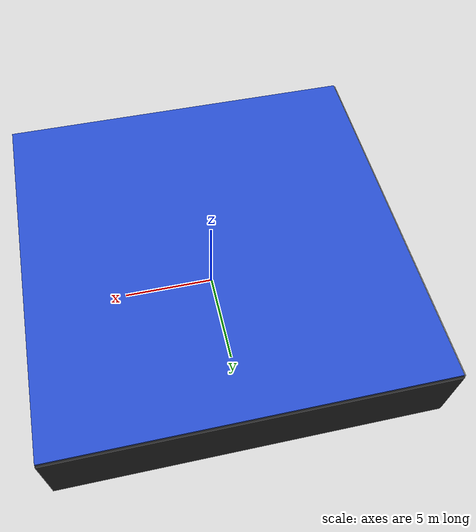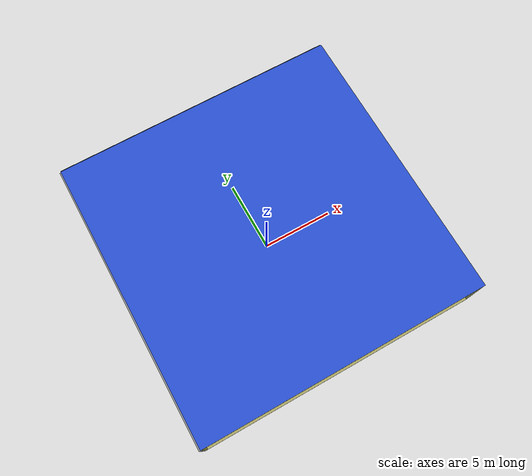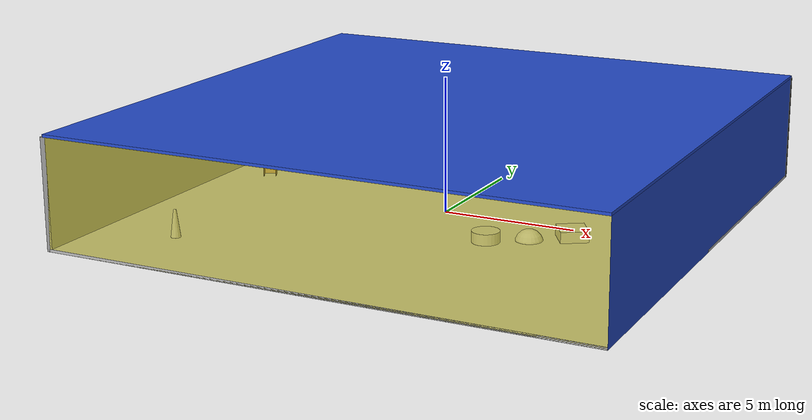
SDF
<sdf version="1.4">
 <world name="default">
  <physics type="ode">
   <max_step_size>0.001</max_step_size>
   <real_time_factor>1</real_time_factor>
   <real_time_update_rate>1000</real_time_update_rate>
   <gravity>0 0 -9.8</gravity>
  </physics>
  <scene><ambient>0.4 0.4 0.4 1</ambient><background>0.7 0.7 0.7 1</background><shadows>1</shadows></scene>
  <model name="Surrounding">
   <static>1</static>
   <link name="Ceiling">
    <collision name="Ceiling_Collision"><geometry><box><size>20 20 0.1</size></box></geometry></collision>
    <visual name="Ceiling_Visual">
     <geometry><box><size>20 20 0.1</size></box></geometry>
     <material>
      <script><uri>file://media/materials/scripts/gazebo.material</uri><name>Gazebo/BlueGlow</name></script>
     </material>
    </visual>
    <pose>0 0 4.05 0 0 0</pose>
   </link>
   <link name="Wall_South">
    <collision name="Wall_South_Collision">
     <geometry><box><size>20 0 4</size></box></geometry>
     <pose>0 0 2 0 -0 0</pose>
    </collision>
    <visual name="Wall_South_Visual">
     <pose>0 0 2 0 -0 0</pose>
     <geometry><box><size>20 0 4</size></box></geometry>
     <material>
      <script>
       <uri>file://media/materials/scripts/gazebo.material</uri>
       <name>Gazebo/YellowTransparent</name>
      </script>
     </material>
    </visual>
    <velocity_decay><linear>0</linear><angular>0</angular></velocity_decay>
    <pose>0 -10 0 0 -0 0</pose>
   </link>
   <link name="Wall_East">
    <collision name="Wall_21_Collision">
     <geometry><box><size>20 0 4</size></box></geometry>
     <pose>0 0 2 0 -0 0</pose>
    </collision>
    <visual name="Wall_21_Visual">
     <pose>0 0 2 0 -0 0</pose>
     <geometry><box><size>20 0 4</size></box></geometry>
     <material>
      <script><uri>file://media/materials/scripts/gazebo.material</uri><name>Gazebo/Blue</name></script>
     </material>
    </visual>
    <velocity_decay><linear>0</linear><angular>0</angular></velocity_decay>
    <pose>10 0 0 0 -0 1.5708</pose>
   </link>
   <link name="Wall_North">
    <collision name="Wall_22_Collision">
     <geometry><box><size>20 0.2 4</size></box></geometry>
     <pose>0 0 2 0 -0 0</pose>
    </collision>
    <visual name="Wall_22_Visual">
     <pose>0 0 2 0 -0 0</pose>
     <geometry><box><size>20 0.2 4</size></box></geometry>
     <material>
      <script><uri>file://media/materials/scripts/gazebo.material</uri><name>Gazebo/Black</name></script>
     </material>
    </visual>
    <velocity_decay><linear>0</linear><angular>0</angular></velocity_decay>
    <pose>0 10 0 0 -0 0</pose>
   </link>
   <link name="Wall_West">
    <collision name="Wall_23_Collision">
     <geometry><box><size>20 0.2 4</size></box></geometry>
     <pose>0 0 2 0 -0 0</pose>
    </collision>
    <visual name="Wall_23_Visual">
     <pose>0 0 2 0 -0 0</pose>
     <geometry><box><size>20 0.2 4</size></box></geometry>
     <material>
      <script><uri>file://media/materials/scripts/gazebo.material</uri><name>Gazebo/Grey</name></script>
     </material>
    </visual>
    <velocity_decay><linear>0</linear><angular>0</angular></velocity_decay>
    <pose>-10 0 0 0 0 -1.5708</pose>
   </link>
   <link name="Ground_link">
    <collision name="collision">
     <pose>0 0 .05 0 -0 0</pose>
     <geometry><box><size>20 20 0.1</size></box></geometry>
    </collision>
    <visual name="visual">
     <pose>0 0 .05 0 -0 0</pose>
     <geometry><box><size>20 20 0.1</size></box></geometry>
     <material>
      <script><uri>file://media/materials/scripts/gazebo.material</uri><name>Gazebo/Pioneer2Body</name></script>
     </material>
    </visual>
   </link>
   <static>1</static>
  </model>
  <spherical_coordinates>
   <surface_model>EARTH_WGS84</surface_model>
   <latitude_deg>0</latitude_deg>
   <longitude_deg>0</longitude_deg>
   <elevation>0</elevation>
   <heading_deg>0</heading_deg>
  </spherical_coordinates>
  <light name="lightball_0" type="diffuse">
   <diffuse>0.8 0.8 0.8 1</diffuse>
   <specular>0.2 0.2 0.2 1</specular>
   <attenuation>
    <range>100</range>
    <constant>0.7</constant>
    <linear>0.01</linear>
    <quadratic>0.001</quadratic>
   </attenuation>
   <direction>-0.5 0.1 -0.9</direction>
   <pose>5.45982432991 -7.10176535501 2.19193477575 0 0 0</pose>
  </light>
  <light name="lightball_1" type="diffuse">
   <diffuse>0.8 0.8 0.8 1</diffuse>
   <specular>0.2 0.2 0.2 1</specular>
   <attenuation>
    <range>100</range>
    <constant>0.7</constant>
    <linear>0.01</linear>
    <quadratic>0.001</quadratic>
   </attenuation>
   <direction>-0.5 0.1 -0.9</direction>
   <pose>7.53510873852 -5.30581847196 3.4857127817 0 0 0</pose>
  </light>
  <light name="lightball_2" type="diffuse">
   <diffuse>0.8 0.8 0.8 1</diffuse>
   <specular>0.2 0.2 0.2 1</specular>
   <attenuation>
    <range>100</range>
    <constant>0.7</constant>
    <linear>0.01</linear>
    <quadratic>0.001</quadratic>
   </attenuation>
   <direction>-0.5 0.1 -0.9</direction>
   <pose>6.34569184298 -0.855950301653 3.17737177017 0 0 0</pose>
  </light>
  <light name="lightball_3" type="diffuse">
   <diffuse>0.8 0.8 0.8 1</diffuse>
   <specular>0.2 0.2 0.2 1</specular>
   <attenuation>
    <range>100</range>
    <constant>0.7</constant>
    <linear>0.01</linear>
    <quadratic>0.001</quadratic>
   </attenuation>
   <direction>-0.5 0.1 -0.9</direction>
   <pose>-1.25155894715 8.16634728867 2.72990218005 0 0 0</pose>
  </light>
  <light name="lightball_4" type="diffuse">
   <diffuse>0.8 0.8 0.8 1</diffuse>
   <specular>0.2 0.2 0.2 1</specular>
   <attenuation>
    <range>100</range>
    <constant>0.7</constant>
    <linear>0.01</linear>
    <quadratic>0.001</quadratic>
   </attenuation>
   <direction>-0.5 0.1 -0.9</direction>
   <pose>8.53086979998 2.49964896246 2.26952572995 0 0 0</pose>
  </light>
  <light name="lightball_5" type="diffuse">
   <diffuse>0.8 0.8 0.8 1</diffuse>
   <specular>0.2 0.2 0.2 1</specular>
   <attenuation>
    <range>100</range>
    <constant>0.7</constant>
    <linear>0.01</linear>
    <quadratic>0.001</quadratic>
   </attenuation>
   <direction>-0.5 0.1 -0.9</direction>
   <pose>-8.78350789748 4.74338212167 3.16672410891 0 0 0</pose>
  </light>
  <light name="lightball_6" type="diffuse">
   <diffuse>0.8 0.8 0.8 1</diffuse>
   <specular>0.2 0.2 0.2 1</specular>
   <attenuation>
    <range>100</range>
    <constant>0.7</constant>
    <linear>0.01</linear>
    <quadratic>0.001</quadratic>
   </attenuation>
   <direction>-0.5 0.1 -0.9</direction>
   <pose>4.37700278671 -7.48326532569 2.09508920352 0 0 0</pose>
  </light>
  <light name="lightball_7" type="diffuse">
   <diffuse>0.8 0.8 0.8 1</diffuse>
   <specular>0.2 0.2 0.2 1</specular>
   <attenuation>
    <range>100</range>
    <constant>0.7</constant>
    <linear>0.01</linear>
    <quadratic>0.001</quadratic>
   </attenuation>
   <direction>-0.5 0.1 -0.9</direction>
   <pose>-0.582537698333 1.40349180909 2.41697109919 0 0 0</pose>
  </light>
  <light name="lightball_8" type="diffuse">
   <diffuse>0.8 0.8 0.8 1</diffuse>
   <specular>0.2 0.2 0.2 1</specular>
   <attenuation>
    <range>100</range>
    <constant>0.7</constant>
    <linear>0.01</linear>
    <quadratic>0.001</quadratic>
   </attenuation>
   <direction>-0.5 0.1 -0.9</direction>
   <pose>-6.74776558247 -8.26278818612 3.34960457313 0 0 0</pose>
  </light>
  <light name="lightball_9" type="diffuse">
   <diffuse>0.8 0.8 0.8 1</diffuse>
   <specular>0.2 0.2 0.2 1</specular>
   <attenuation>
    <range>100</range>
    <constant>0.7</constant>
    <linear>0.01</linear>
    <quadratic>0.001</quadratic>
   </attenuation>
   <direction>-0.5 0.1 -0.9</direction>
   <pose>-5.89617118997 -8.67363771311 2.8437245372 0 0 0</pose>
  </light>
  <include>
   <uri>model://construction_cone</uri>
   <pose>-6.95997951266 -7.01612163113 0 0 0 1.63889185709</pose>
  </include>
  <include><uri>model://cabinet</uri><pose>-8.24467329831 1.14508671639 0 0 0 2.05204428269</pose></include>
  <include>
   <uri>model://textured_shapes</uri>
   <pose>-3.99332468667 3.86270957072 0 0 0 0.441687641514</pose>
  </include>
  <include>
   <uri>model://textured_shapes</uri>
   <pose>4.15488932048 -2.00086130738 0 0 0 2.12951126983</pose>
  </include>
  <include><uri>model://cabinet</uri><pose>4.76780263307 3.91626296494 0 0 0 1.52271938202</pose></include>
  <include><uri>model://cabinet</uri><pose>7.12781992009 3.97511452067 0 0 0 2.59560058002</pose></include>
 </world>
</sdf>

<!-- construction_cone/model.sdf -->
<sdf version="1.5">
  <model name="Construction Cone">
    <link name="link">
      <collision name="collision">
        <geometry>
          <mesh>
            <scale>10 10 10</scale>
            <uri>file://isr-testbed/construction_cone/meshes/construction_cone.dae</uri>
          </mesh>
        </geometry>
      </collision>
      <visual name="visual">
        <geometry>
          <mesh>
            <scale>10 10 10</scale>
            <uri>file://isr-testbed/construction_cone/meshes/construction_cone.dae</uri>
          </mesh>
        </geometry>
      </visual>
    </link>
  </model>
</sdf>

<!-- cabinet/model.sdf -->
<sdf version="1.5">
  <model name="cabinet">
    <static>true</static>
    <link name="cabinet_bottom_plate">
      <inertial>
        <pose>0 0 -1 0 0 0</pose>
        <inertia>
          <ixx>2.050000</ixx>
          <ixy>0</ixy>
          <ixz>0</ixz>
          <iyy>2.050000</iyy>
          <iyz>0</iyz>
          <izz>2.050000</izz>
        </inertia>
        <mass>25.000000</mass>
      </inertial>
      <collision name="cabinet_bottom_plate_geom">
        <pose>0 0 0.010000 0 0 0</pose>
        <geometry>
          <box>
            <size>0.450000 0.450000 0.020000</size>
          </box>
        </geometry>
      </collision>
      <visual name="cabinet_bottom_plate_geom_visual">
        <pose>0 0 0.010000 0 0 0</pose>
        <geometry>
          <box>
            <size>0.450000 0.450000 0.020000</size>
          </box>
        </geometry>
        <material>
          <script>
            <uri>model://media/materials/scripts/gazebo.material</uri>
            <name>Gazebo/Wood</name>
          </script>
        </material>
      </visual>
      <collision name="cabinet_bottom_plate_geom_cabinet_back_plate">
        <pose>0.235000 0 0.510000 0 0 0</pose>
        <geometry>
          <box>
            <size>0.020000 0.450000 1.020000</size>
          </box>
        </geometry>
      </collision>
      <visual name="cabinet_bottom_plate_geom_cabinet_back_plate_visual">
        <pose>0.235000 0 0.510000 0 0 0</pose>
        <geometry>
          <box>
            <size>0.020000 0.450000 1.020000</size>
          </box>
        </geometry>
        <material>
          <script>
            <uri>model://media/materials/scripts/gazebo.material</uri>
            <name>Gazebo/Wood</name>
          </script>
        </material>
      </visual>
      <collision name="cabinet_bottom_plate_geom_cabinet_left_plate">
        <pose>0 0.235000 0.510000 0 0 0</pose>
        <geometry>
          <box>
            <size>0.450000 0.020000 1.020000</size>
          </box>
        </geometry>
      </collision>
      <visual name="cabinet_bottom_plate_geom_cabinet_left_plate_visual">
        <pose>0 0.235000 0.510000 0 0 0</pose>
        <geometry>
          <box>
            <size>0.450000 0.020000 1.020000</size>
          </box>
        </geometry>
        <material>
          <script>
            <uri>model://media/materials/scripts/gazebo.material</uri>
            <name>Gazebo/Wood</name>
          </script>
        </material>
      </visual>
      <collision name="cabinet_bottom_plate_geom_cabinet_middle_plate">
        <pose>0 0 0.510000 0 0 0</pose>
        <geometry>
          <box>
            <size>0.450000 0.450000 0.020000</size>
          </box>
        </geometry>
      </collision>
      <visual name="cabinet_bottom_plate_geom_cabinet_middle_plate_visual">
        <pose>0 0 0.510000 0 0 0</pose>
        <geometry>
          <box>
            <size>0.450000 0.450000 0.020000</size>
          </box>
        </geometry>
        <material>
          <script>
            <uri>model://media/materials/scripts/gazebo.material</uri>
            <name>Gazebo/Wood</name>
          </script>
        </material>
      </visual>
      <collision name="cabinet_bottom_plate_geom_cabinet_right_plate">
        <pose>0 -0.235000 0.510000 0 0 0</pose>
        <geometry>
          <box>
            <size>0.450000 0.020000 1.020000</size>
          </box>
        </geometry>
      </collision>
      <visual name="cabinet_bottom_plate_geom_cabinet_right_plate_visual">
        <pose>0 -0.235000 0.510000 0 0 0</pose>
        <geometry>
          <box>
            <size>0.450000 0.020000 1.020000</size>
          </box>
        </geometry>
        <material>
          <script>
            <uri>model://media/materials/scripts/gazebo.material</uri>
            <name>Gazebo/Wood</name>
          </script>
        </material>
      </visual>
      <collision name="cabinet_bottom_plate_geom_cabinet_top_plate">
        <pose>0 0 1.010000 0 0 0</pose>
        <geometry>
          <box>
            <size>0.450000 0.450000 0.020000</size>
          </box>
        </geometry>
      </collision>
      <visual name="cabinet_bottom_plate_geom_cabinet_top_plate_visual">
        <pose>0 0 1.010000 0 0 0</pose>
        <geometry>
          <box>
            <size>0.450000 0.450000 0.020000</size>
          </box>
        </geometry>
        <material>
          <script>
            <uri>model://media/materials/scripts/gazebo.material</uri>
            <name>Gazebo/Wood</name>
          </script>
        </material>
      </visual>
    </link>
  </model>
</sdf>

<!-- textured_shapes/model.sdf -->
<sdf version="1.6">
  <model name="textured_shapes">
    <pose>0 0 0.5 0 0 0</pose>
    <link name="box">
      <pose>0 -1.5 0 0 0 0</pose>
      <collision name="collision">
        <geometry>
          <box>
            <size>1 1 1</size>
          </box>
        </geometry>
      </collision>
      <visual name="visual">
        <geometry>
          <box>
            <size>1 1 1</size>
          </box>
        </geometry>
        <material>
          <script>
            <uri>model://../model_source/models/textured_shapes/materials/scripts</uri>
            <uri>model://../model_source/models/textured_shapes/materials/textures</uri>
            <name>TexturedShape/Squares</name>
          </script>
        </material>
      </visual>
    </link>
    <link name="sphere">
      <collision name="collision">
        <geometry>
          <sphere>
            <radius>0.5</radius>
          </sphere>
        </geometry>
      </collision>
      <visual name="visual">
        <geometry>
          <sphere>
            <radius>0.5</radius>
          </sphere>
        </geometry>
        <material>
          <script>
            <uri>model://../model_source/models/textured_shapes/materials/scripts</uri>
            <uri>model://../model_source/models/textured_shapes/materials/textures</uri>
            <name>TexturedShape/Squares</name>
          </script>
        </material>
      </visual>
    </link>
    <link name="cylinder">
      <pose>0 1.5 0 0 0 0</pose>
      <collision name="collision">
        <geometry>
          <cylinder>
            <radius>0.5</radius>
            <length>1</length>
          </cylinder>
        </geometry>
      </collision>
      <visual name="visual">
        <geometry>
          <cylinder>
            <radius>0.5</radius>
            <length>1</length>
          </cylinder>
        </geometry>
        <material>
          <script>
            <uri>model://../model_source/models/textured_shapes/materials/scripts</uri>
            <uri>model://../model_source/models/textured_shapes/materials/textures</uri>
            <name>TexturedShape/Squares</name>
          </script>
        </material>
      </visual>
    </link>
  </model>
</sdf>
